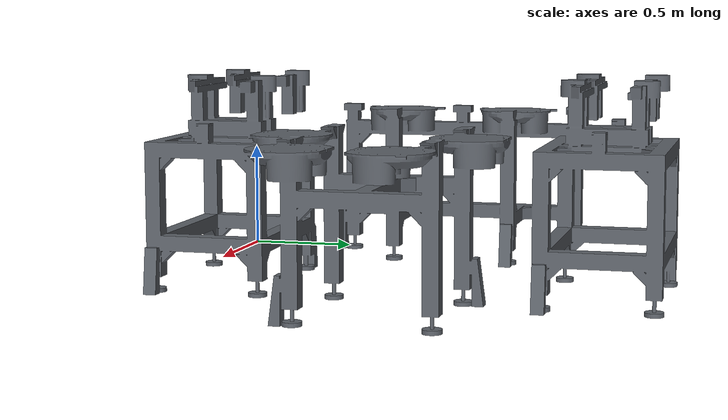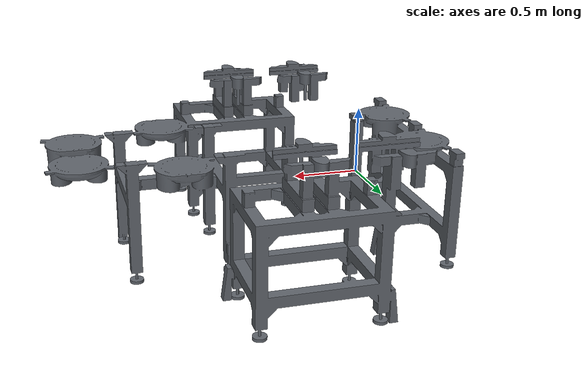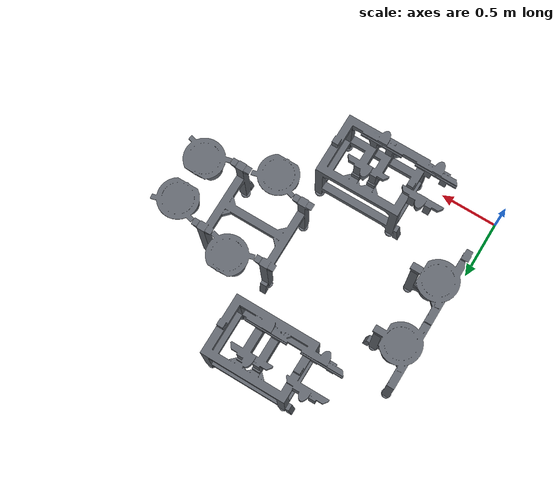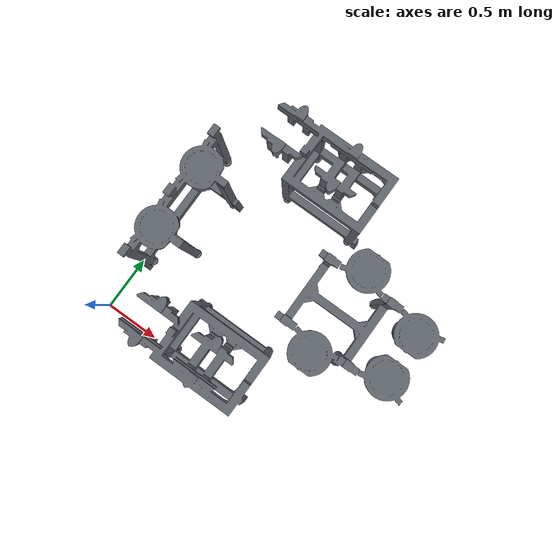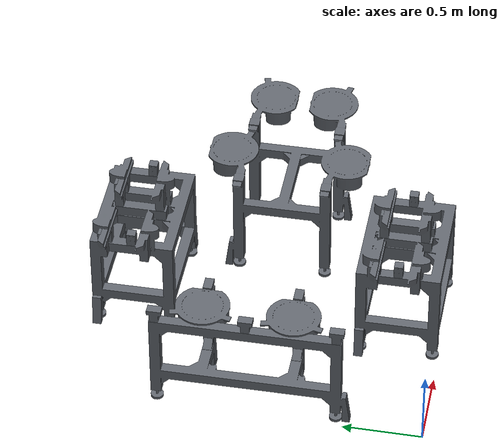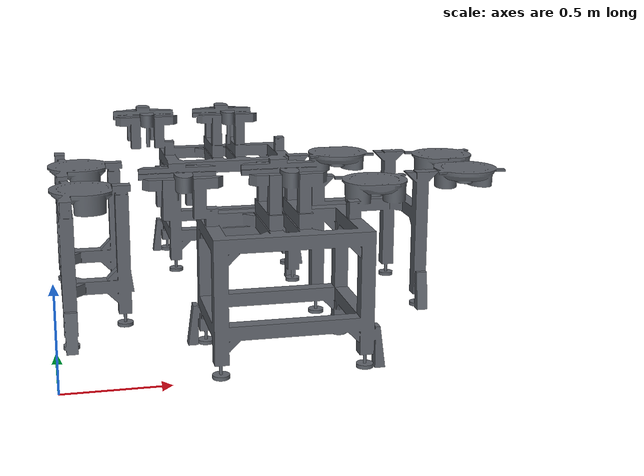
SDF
<?xml version="1.0"?>
<sdf version="1.9">
  <model name="cell_static_gauche_final">
    <static>true</static>
    <link name="cell_static_gauche_final_link">
      <visual name="cell_static_gauche_final_visual">
        <geometry>
          <mesh>
            <uri>model://cell_static_gauche_final/meshes/cell_static_gauche_final.STL</uri>
          </mesh>
        </geometry>
        <material>
          <ambient>0.38 0.40 0.43 1</ambient>
          <diffuse>0.38 0.40 0.43 1</diffuse>
          <specular>0.30 0.30 0.30 1</specular>
          <emissive>0 0 0 1</emissive>
        </material>
      </visual>
      <collision name="cell_static_gauche_final_collision">
        <geometry>
          <mesh>
            <uri>model://cell_static_gauche_final/meshes/cell_static_gauche_final.STL</uri>
          </mesh>
        </geometry>
      </collision>
    </link>
  </model>
</sdf>
